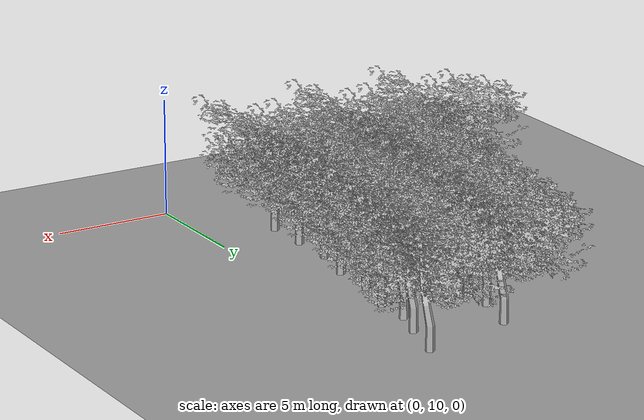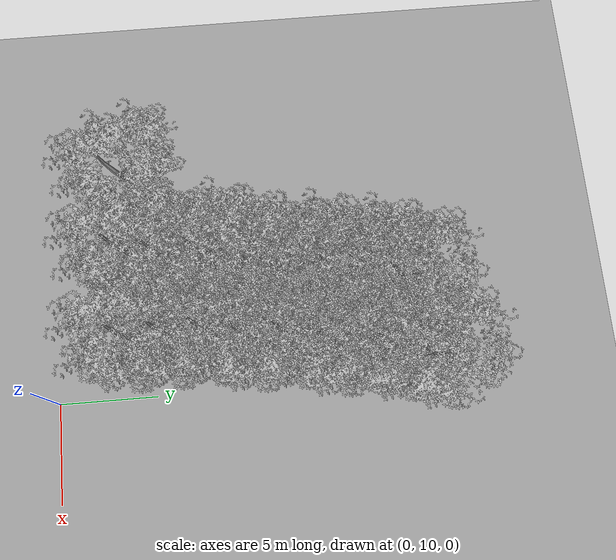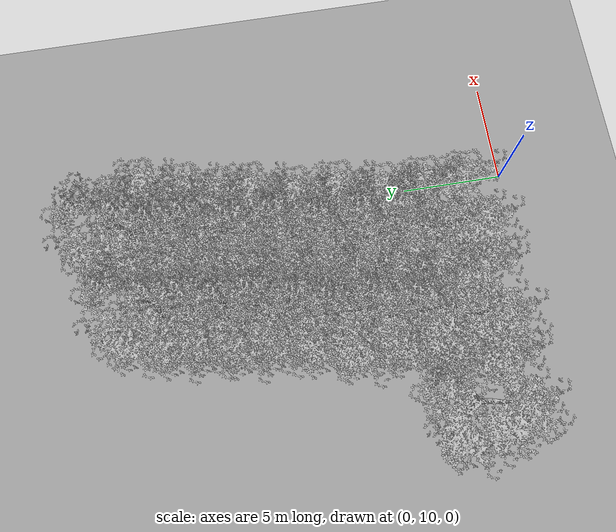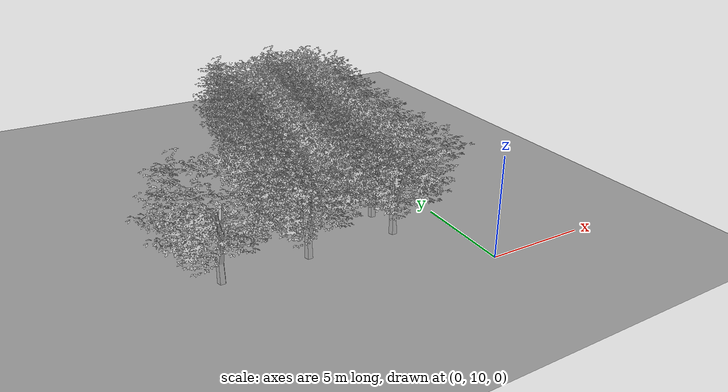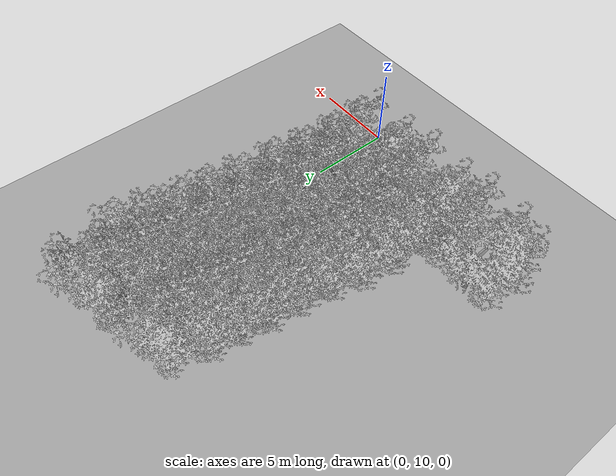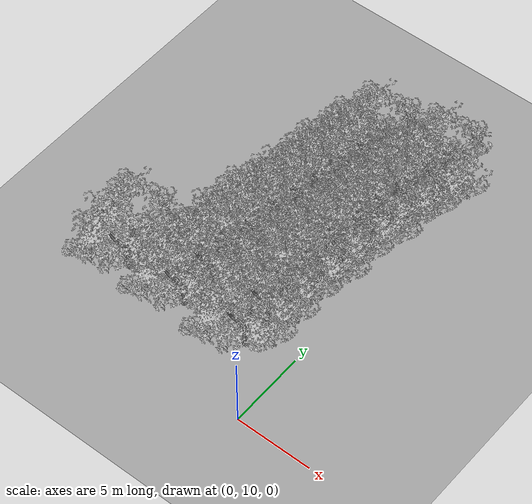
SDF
<sdf version="1.3">
 <world name="default">
  <scene>
   <grid>0</grid>
   <shadows>1</shadows>
   <ambient>0.200000 0.200000 0.200000 1.000000</ambient>
   <background>0.900000 0.900000 0.900000 1.000000</background>
  </scene>
  <light name="sun" type="directional">
   <pose>0.000000 0.000000 10.000000 0.000000 0.000000 0.000000</pose>
   <diffuse>0.800000 0.800000 0.800000 1.000000</diffuse>
   <specular>0.100000 0.100000 0.100000 1.000000</specular>
   <attenuation>
    <range>1000.000000</range>
    <constant>0.900000</constant>
    <linear>0.010000</linear>
    <quadratic>0.001000</quadratic>
   </attenuation>
   <direction>-0.500000 0.500000 -1.000000</direction>
  </light>
  <physics type="ode">
   <update_rate>1000.000000</update_rate>
   <gravity>0.000000 0.000000 -9.800000</gravity>
  </physics>
  <model name="finihed">
   <pose>-7.490730 14.000000 0.000000 0.000000 0.000000 0.000000</pose>
   <static>1</static>
   <link name="link">
    <inertial>
     <mass>10.000000</mass>
     <inertia>
      <ixx>0.001000</ixx>
      <ixy>0.000000</ixy>
      <ixz>0.000000</ixz>
      <iyy>0.001000</iyy>
      <iyz>0.000000</iyz>
      <izz>0.001000</izz>
     </inertia>
    </inertial>
    <collision name="collision">
     <geometry><cylinder><radius>0.150000</radius><length>5.000000</length></cylinder></geometry>
    </collision>
    <visual name="visual">
     <geometry>
      <mesh><uri>model://finihed/meshes/finihed.dae</uri><scale>1.000000 1.000000 1.000000</scale></mesh>
     </geometry>
    </visual>
    <velocity_decay><linear>0.000000</linear><angular>0.000000</angular></velocity_decay>
   </link>
  </model>
  <model name="finihed_0">
   <pose>-3.000000 14.000000 0.000000 0.000000 0.000000 0.000000</pose>
   <static>1</static>
   <link name="link">
    <inertial>
     <mass>10.000000</mass>
     <inertia>
      <ixx>0.001000</ixx>
      <ixy>0.000000</ixy>
      <ixz>0.000000</ixz>
      <iyy>0.001000</iyy>
      <iyz>0.000000</iyz>
      <izz>0.001000</izz>
     </inertia>
    </inertial>
    <collision name="collision">
     <geometry><cylinder><radius>0.150000</radius><length>5.000000</length></cylinder></geometry>
    </collision>
    <visual name="visual">
     <geometry>
      <mesh><uri>model://finihed/meshes/finihed.dae</uri><scale>1.000000 1.000000 1.000000</scale></mesh>
     </geometry>
    </visual>
    <velocity_decay><linear>0.000000</linear><angular>0.000000</angular></velocity_decay>
   </link>
  </model>
  <model name="finihed_1">
   <pose>-11.593000 14.000000 0.000000 0.000000 0.000000 0.000000</pose>
   <static>1</static>
   <link name="link">
    <inertial>
     <mass>10.000000</mass>
     <inertia>
      <ixx>0.001000</ixx>
      <ixy>0.000000</ixy>
      <ixz>0.000000</ixz>
      <iyy>0.001000</iyy>
      <iyz>0.000000</iyz>
      <izz>0.001000</izz>
     </inertia>
    </inertial>
    <collision name="collision">
     <geometry><cylinder><radius>0.150000</radius><length>5.000000</length></cylinder></geometry>
    </collision>
    <visual name="visual">
     <geometry>
      <mesh><uri>model://finihed/meshes/finihed.dae</uri><scale>1.000000 1.000000 1.000000</scale></mesh>
     </geometry>
    </visual>
    <velocity_decay><linear>0.000000</linear><angular>0.000000</angular></velocity_decay>
   </link>
  </model>
  <model name="finihed_2">
   <pose>-3.000000 16.000000 0.000000 0.000000 0.000000 0.000000</pose>
   <static>1</static>
   <link name="link">
    <inertial>
     <mass>10.000000</mass>
     <inertia>
      <ixx>0.001000</ixx>
      <ixy>0.000000</ixy>
      <ixz>0.000000</ixz>
      <iyy>0.001000</iyy>
      <iyz>0.000000</iyz>
      <izz>0.001000</izz>
     </inertia>
    </inertial>
    <collision name="collision">
     <geometry><cylinder><radius>0.150000</radius><length>5.000000</length></cylinder></geometry>
    </collision>
    <visual name="visual">
     <geometry>
      <mesh><uri>model://finihed/meshes/finihed.dae</uri><scale>1.000000 1.000000 1.000000</scale></mesh>
     </geometry>
    </visual>
    <velocity_decay><linear>0.000000</linear><angular>0.000000</angular></velocity_decay>
   </link>
  </model>
  <model name="finihed_3">
   <pose>-3.000000 18.000000 0.000000 0.000000 0.000000 0.000000</pose>
   <static>1</static>
   <link name="link">
    <inertial>
     <mass>10.000000</mass>
     <inertia>
      <ixx>0.001000</ixx>
      <ixy>0.000000</ixy>
      <ixz>0.000000</ixz>
      <iyy>0.001000</iyy>
      <iyz>0.000000</iyz>
      <izz>0.001000</izz>
     </inertia>
    </inertial>
    <collision name="collision">
     <geometry><cylinder><radius>0.150000</radius><length>5.000000</length></cylinder></geometry>
    </collision>
    <visual name="visual">
     <geometry>
      <mesh><uri>model://finihed/meshes/finihed.dae</uri><scale>1.000000 1.000000 1.000000</scale></mesh>
     </geometry>
    </visual>
    <velocity_decay><linear>0.000000</linear><angular>0.000000</angular></velocity_decay>
   </link>
  </model>
  <model name="finihed_4">
   <pose>-2.558330 20.000000 0.000000 0.000000 0.000000 0.000000</pose>
   <static>1</static>
   <link name="link">
    <inertial>
     <mass>10.000000</mass>
     <inertia>
      <ixx>0.001000</ixx>
      <ixy>0.000000</ixy>
      <ixz>0.000000</ixz>
      <iyy>0.001000</iyy>
      <iyz>0.000000</iyz>
      <izz>0.001000</izz>
     </inertia>
    </inertial>
    <collision name="collision">
     <geometry><cylinder><radius>0.150000</radius><length>5.000000</length></cylinder></geometry>
    </collision>
    <visual name="visual">
     <geometry>
      <mesh><uri>model://finihed/meshes/finihed.dae</uri><scale>1.000000 1.000000 1.000000</scale></mesh>
     </geometry>
    </visual>
    <velocity_decay><linear>0.000000</linear><angular>0.000000</angular></velocity_decay>
   </link>
  </model>
  <model name="finihed_5">
   <pose>-2.521060 22.000000 0.000000 0.000000 0.000000 0.000000</pose>
   <static>1</static>
   <link name="link">
    <inertial>
     <mass>10.000000</mass>
     <inertia>
      <ixx>0.001000</ixx>
      <ixy>0.000000</ixy>
      <ixz>0.000000</ixz>
      <iyy>0.001000</iyy>
      <iyz>0.000000</iyz>
      <izz>0.001000</izz>
     </inertia>
    </inertial>
    <collision name="collision">
     <geometry><cylinder><radius>0.150000</radius><length>5.000000</length></cylinder></geometry>
    </collision>
    <visual name="visual">
     <geometry>
      <mesh><uri>model://finihed/meshes/finihed.dae</uri><scale>1.000000 1.000000 1.000000</scale></mesh>
     </geometry>
    </visual>
    <velocity_decay><linear>0.000000</linear><angular>0.000000</angular></velocity_decay>
   </link>
  </model>
  <model name="finihed_6">
   <pose>-2.000000 24.000000 0.000000 0.000000 0.000000 0.000000</pose>
   <static>1</static>
   <link name="link">
    <inertial>
     <mass>10.000000</mass>
     <inertia>
      <ixx>0.001000</ixx>
      <ixy>0.000000</ixy>
      <ixz>0.000000</ixz>
      <iyy>0.001000</iyy>
      <iyz>0.000000</iyz>
      <izz>0.001000</izz>
     </inertia>
    </inertial>
    <collision name="collision">
     <geometry><cylinder><radius>0.150000</radius><length>5.000000</length></cylinder></geometry>
    </collision>
    <visual name="visual">
     <geometry>
      <mesh><uri>model://finihed/meshes/finihed.dae</uri><scale>1.000000 1.000000 1.000000</scale></mesh>
     </geometry>
    </visual>
    <velocity_decay><linear>0.000000</linear><angular>0.000000</angular></velocity_decay>
   </link>
  </model>
  <model name="finihed_7">
   <pose>-2.000000 25.586800 0.000000 0.000000 0.000000 0.000000</pose>
   <static>1</static>
   <link name="link">
    <inertial>
     <mass>10.000000</mass>
     <inertia>
      <ixx>0.001000</ixx>
      <ixy>0.000000</ixy>
      <ixz>0.000000</ixz>
      <iyy>0.001000</iyy>
      <iyz>0.000000</iyz>
      <izz>0.001000</izz>
     </inertia>
    </inertial>
    <collision name="collision">
     <geometry><cylinder><radius>0.150000</radius><length>5.000000</length></cylinder></geometry>
    </collision>
    <visual name="visual">
     <geometry>
      <mesh><uri>model://finihed/meshes/finihed.dae</uri><scale>1.000000 1.000000 1.000000</scale></mesh>
     </geometry>
    </visual>
    <velocity_decay><linear>0.000000</linear><angular>0.000000</angular></velocity_decay>
   </link>
  </model>
  <model name="finihed_8">
   <pose>-1.541750 27.000000 0.000000 0.000000 0.000000 0.000000</pose>
   <static>1</static>
   <link name="link">
    <inertial>
     <mass>10.000000</mass>
     <inertia>
      <ixx>0.001000</ixx>
      <ixy>0.000000</ixy>
      <ixz>0.000000</ixz>
      <iyy>0.001000</iyy>
      <iyz>0.000000</iyz>
      <izz>0.001000</izz>
     </inertia>
    </inertial>
    <collision name="collision">
     <geometry><cylinder><radius>0.150000</radius><length>5.000000</length></cylinder></geometry>
    </collision>
    <visual name="visual">
     <geometry>
      <mesh><uri>model://finihed/meshes/finihed.dae</uri><scale>1.000000 1.000000 1.000000</scale></mesh>
     </geometry>
    </visual>
    <velocity_decay><linear>0.000000</linear><angular>0.000000</angular></velocity_decay>
   </link>
  </model>
  <model name="finihed_9">
   <pose>-1.000000 29.000000 0.000000 0.000000 0.000000 0.000000</pose>
   <static>1</static>
   <link name="link">
    <inertial>
     <mass>10.000000</mass>
     <inertia>
      <ixx>0.001000</ixx>
      <ixy>0.000000</ixy>
      <ixz>0.000000</ixz>
      <iyy>0.001000</iyy>
      <iyz>0.000000</iyz>
      <izz>0.001000</izz>
     </inertia>
    </inertial>
    <collision name="collision">
     <geometry><cylinder><radius>0.150000</radius><length>5.000000</length></cylinder></geometry>
    </collision>
    <visual name="visual">
     <geometry>
      <mesh><uri>model://finihed/meshes/finihed.dae</uri><scale>1.000000 1.000000 1.000000</scale></mesh>
     </geometry>
    </visual>
    <velocity_decay><linear>0.000000</linear><angular>0.000000</angular></velocity_decay>
   </link>
  </model>
  <model name="finihed_10">
   <pose>-7.000000 16.000000 0.000000 0.000000 0.000000 0.000000</pose>
   <static>1</static>
   <link name="link">
    <inertial>
     <mass>10.000000</mass>
     <inertia>
      <ixx>0.001000</ixx>
      <ixy>0.000000</ixy>
      <ixz>0.000000</ixz>
      <iyy>0.001000</iyy>
      <iyz>0.000000</iyz>
      <izz>0.001000</izz>
     </inertia>
    </inertial>
    <collision name="collision">
     <geometry><cylinder><radius>0.150000</radius><length>5.000000</length></cylinder></geometry>
    </collision>
    <visual name="visual">
     <geometry>
      <mesh><uri>model://finihed/meshes/finihed.dae</uri><scale>1.000000 1.000000 1.000000</scale></mesh>
     </geometry>
    </visual>
    <velocity_decay><linear>0.000000</linear><angular>0.000000</angular></velocity_decay>
   </link>
  </model>
  <model name="finihed_11">
   <pose>-7.000000 18.000000 0.000000 0.000000 0.000000 0.000000</pose>
   <static>1</static>
   <link name="link">
    <inertial>
     <mass>10.000000</mass>
     <inertia>
      <ixx>0.001000</ixx>
      <ixy>0.000000</ixy>
      <ixz>0.000000</ixz>
      <iyy>0.001000</iyy>
      <iyz>0.000000</iyz>
      <izz>0.001000</izz>
     </inertia>
    </inertial>
    <collision name="collision">
     <geometry><cylinder><radius>0.150000</radius><length>5.000000</length></cylinder></geometry>
    </collision>
    <visual name="visual">
     <geometry>
      <mesh><uri>model://finihed/meshes/finihed.dae</uri><scale>1.000000 1.000000 1.000000</scale></mesh>
     </geometry>
    </visual>
    <velocity_decay><linear>0.000000</linear><angular>0.000000</angular></velocity_decay>
   </link>
  </model>
  <model name="finihed_12">
   <pose>-6.498110 19.570800 0.000000 0.000000 0.000000 0.000000</pose>
   <static>1</static>
   <link name="link">
    <inertial>
     <mass>10.000000</mass>
     <inertia>
      <ixx>0.001000</ixx>
      <ixy>0.000000</ixy>
      <ixz>0.000000</ixz>
      <iyy>0.001000</iyy>
      <iyz>0.000000</iyz>
      <izz>0.001000</izz>
     </inertia>
    </inertial>
    <collision name="collision">
     <geometry><cylinder><radius>0.150000</radius><length>5.000000</length></cylinder></geometry>
    </collision>
    <visual name="visual">
     <geometry>
      <mesh><uri>model://finihed/meshes/finihed.dae</uri><scale>1.000000 1.000000 1.000000</scale></mesh>
     </geometry>
    </visual>
    <velocity_decay><linear>0.000000</linear><angular>0.000000</angular></velocity_decay>
   </link>
  </model>
  <model name="finihed_13">
   <pose>-6.000000 21.501500 0.000000 0.000000 0.000000 0.000000</pose>
   <static>1</static>
   <link name="link">
    <inertial>
     <mass>10.000000</mass>
     <inertia>
      <ixx>0.001000</ixx>
      <ixy>0.000000</ixy>
      <ixz>0.000000</ixz>
      <iyy>0.001000</iyy>
      <iyz>0.000000</iyz>
      <izz>0.001000</izz>
     </inertia>
    </inertial>
    <collision name="collision">
     <geometry><cylinder><radius>0.150000</radius><length>5.000000</length></cylinder></geometry>
    </collision>
    <visual name="visual">
     <geometry>
      <mesh><uri>model://finihed/meshes/finihed.dae</uri><scale>1.000000 1.000000 1.000000</scale></mesh>
     </geometry>
    </visual>
    <velocity_decay><linear>0.000000</linear><angular>0.000000</angular></velocity_decay>
   </link>
  </model>
  <model name="finihed_14">
   <pose>-6.000000 23.000000 0.000000 0.000000 0.000000 0.000000</pose>
   <static>1</static>
   <link name="link">
    <inertial>
     <mass>10.000000</mass>
     <inertia>
      <ixx>0.001000</ixx>
      <ixy>0.000000</ixy>
      <ixz>0.000000</ixz>
      <iyy>0.001000</iyy>
      <iyz>0.000000</iyz>
      <izz>0.001000</izz>
     </inertia>
    </inertial>
    <collision name="collision">
     <geometry><cylinder><radius>0.150000</radius><length>5.000000</length></cylinder></geometry>
    </collision>
    <visual name="visual">
     <geometry>
      <mesh><uri>model://finihed/meshes/finihed.dae</uri><scale>1.000000 1.000000 1.000000</scale></mesh>
     </geometry>
    </visual>
    <velocity_decay><linear>0.000000</linear><angular>0.000000</angular></velocity_decay>
   </link>
  </model>
  <model name="finihed_15">
   <pose>-5.595620 24.553100 0.000000 0.000000 0.000000 0.000000</pose>
   <static>1</static>
   <link name="link">
    <inertial>
     <mass>10.000000</mass>
     <inertia>
      <ixx>0.001000</ixx>
      <ixy>0.000000</ixy>
      <ixz>0.000000</ixz>
      <iyy>0.001000</iyy>
      <iyz>0.000000</iyz>
      <izz>0.001000</izz>
     </inertia>
    </inertial>
    <collision name="collision">
     <geometry><cylinder><radius>0.150000</radius><length>5.000000</length></cylinder></geometry>
    </collision>
    <visual name="visual">
     <geometry>
      <mesh><uri>model://finihed/meshes/finihed.dae</uri><scale>1.000000 1.000000 1.000000</scale></mesh>
     </geometry>
    </visual>
    <velocity_decay><linear>0.000000</linear><angular>0.000000</angular></velocity_decay>
   </link>
  </model>
  <model name="finihed_16">
   <pose>-5.536400 26.000000 0.000000 0.000000 0.000000 0.000000</pose>
   <static>1</static>
   <link name="link">
    <inertial>
     <mass>10.000000</mass>
     <inertia>
      <ixx>0.001000</ixx>
      <ixy>0.000000</ixy>
      <ixz>0.000000</ixz>
      <iyy>0.001000</iyy>
      <iyz>0.000000</iyz>
      <izz>0.001000</izz>
     </inertia>
    </inertial>
    <collision name="collision">
     <geometry><cylinder><radius>0.150000</radius><length>5.000000</length></cylinder></geometry>
    </collision>
    <visual name="visual">
     <geometry>
      <mesh><uri>model://finihed/meshes/finihed.dae</uri><scale>1.000000 1.000000 1.000000</scale></mesh>
     </geometry>
    </visual>
    <velocity_decay><linear>0.000000</linear><angular>0.000000</angular></velocity_decay>
   </link>
  </model>
  <model name="finihed_17">
   <pose>-5.000000 28.000000 0.000000 0.000000 0.000000 0.000000</pose>
   <static>1</static>
   <link name="link">
    <inertial>
     <mass>10.000000</mass>
     <inertia>
      <ixx>0.001000</ixx>
      <ixy>0.000000</ixy>
      <ixz>0.000000</ixz>
      <iyy>0.001000</iyy>
      <iyz>0.000000</iyz>
      <izz>0.001000</izz>
     </inertia>
    </inertial>
    <collision name="collision">
     <geometry><cylinder><radius>0.150000</radius><length>5.000000</length></cylinder></geometry>
    </collision>
    <visual name="visual">
     <geometry>
      <mesh><uri>model://finihed/meshes/finihed.dae</uri><scale>1.000000 1.000000 1.000000</scale></mesh>
     </geometry>
    </visual>
    <velocity_decay><linear>0.000000</linear><angular>0.000000</angular></velocity_decay>
   </link>
  </model>
  <model name="sanca_ground_plane">
   <static>1</static>
   <link name="link">
    <collision name="collision">
     <geometry>
      <plane><normal>0.000000 0.000000 1.000000</normal><size>100.000000 100.000000</size></plane>
     </geometry>
     <surface><friction><ode><mu>100.000000</mu><mu2>50.000000</mu2></ode></friction></surface>
    </collision>
    <visual name="visual">
     <cast_shadows>0</cast_shadows>
     <geometry>
      <plane><normal>0.000000 0.000000 1.000000</normal><size>100.000000 100.000000</size></plane>
     </geometry>
     <material>
      <script><uri>file://media/materials/scripts/gazebo.material</uri><name>Gazebo/Grey</name></script>
     </material>
    </visual>
    <velocity_decay><linear>0.000000</linear><angular>0.000000</angular></velocity_decay>
   </link>
   <pose>-7.000000 38.000000 0.000000 0.000000 0.000000 0.000000</pose>
  </model>
 </world>
</sdf>
